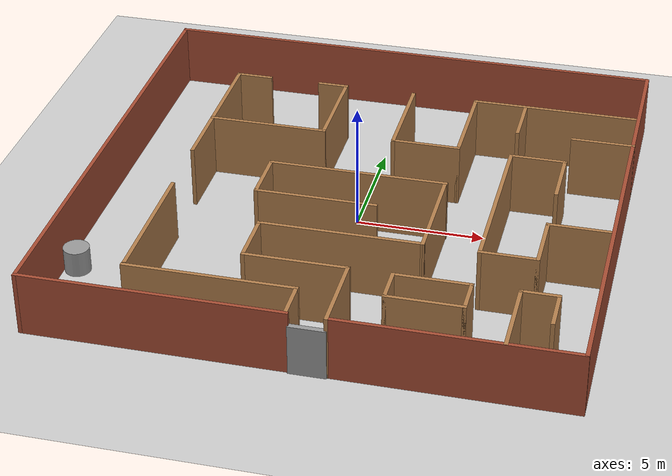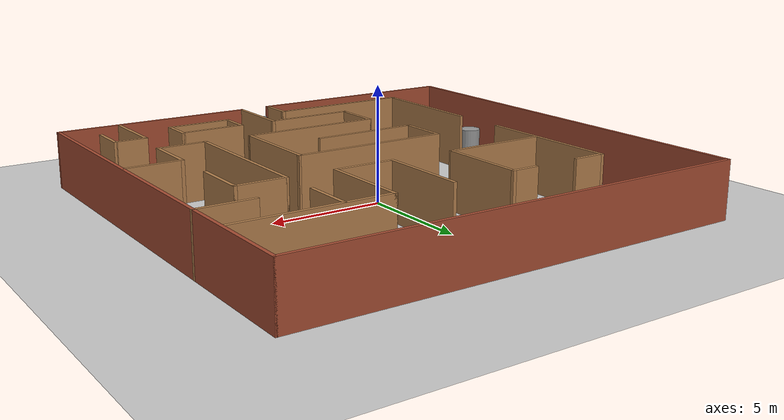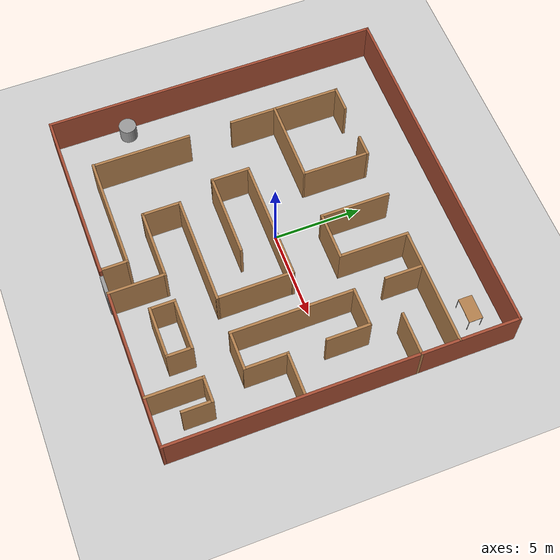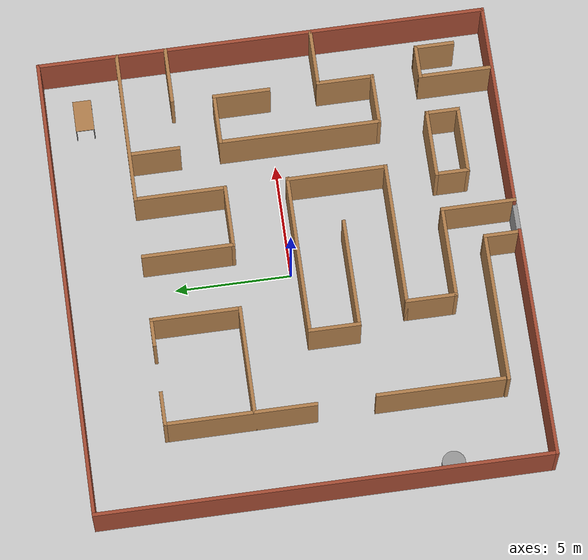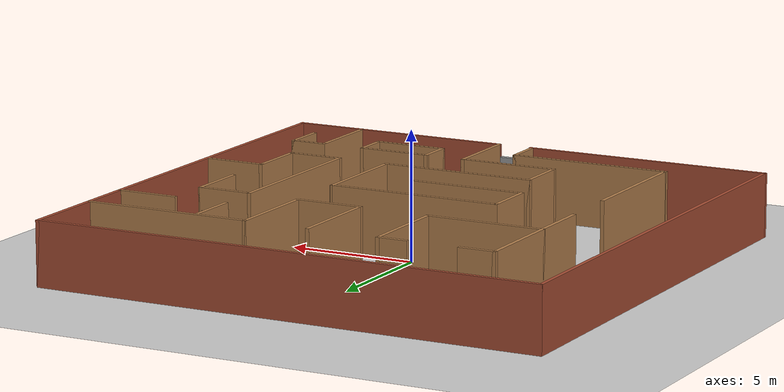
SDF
<sdf version="1.7">
 <world name="default">
  <light name="sun" type="directional">
   <pose>0 0 10 0 -0 0</pose>
   <diffuse>0.8 0.8 0.8 1</diffuse>
   <specular>0.1 0.1 0.1 1</specular>
   <attenuation>
    <range>1000</range>
    <constant>0.9</constant>
    <linear>0.01</linear>
    <quadratic>0.001</quadratic>
   </attenuation>
   <direction>-0.5 0.5 -1</direction>
   <spot><inner_angle>0</inner_angle><outer_angle>0</outer_angle><falloff>0</falloff></spot>
  </light>
  <model name="ground_plane">
   <static>1</static>
   <link name="link">
    <collision name="collision">
     <geometry><plane><normal>0 0 1</normal><size>100 100</size></plane></geometry>
     <surface><friction><ode><mu>100</mu><mu2>50</mu2></ode></friction></surface>
    </collision>
    <visual name="visual">
     <cast_shadows>0</cast_shadows>
     <geometry><plane><normal>0 0 1</normal><size>100 100</size></plane></geometry>
     <material>
      <script><uri>file://media/materials/scripts/gazebo.material</uri><name>Gazebo/Grey</name></script>
     </material>
    </visual>
   </link>
  </model>
  <gravity>0 0 -9.8</gravity>
  <magnetic_field>6e-06 2.3e-05 -4.2e-05</magnetic_field>
  <atmosphere type="adiabatic"/>
  <physics name="default_physics" default="0" type="ode">
   <max_step_size>0.001</max_step_size>
   <real_time_factor>1</real_time_factor>
   <real_time_update_rate>1000</real_time_update_rate>
  </physics>
  <scene><ambient>0.4 0.4 0.4 1</ambient><background>0.7 0.7 0.7 1</background><shadows>1</shadows></scene>
  <spherical_coordinates>
   <surface_model>EARTH_WGS84</surface_model>
   <latitude_deg>0</latitude_deg>
   <longitude_deg>0</longitude_deg>
   <elevation>0</elevation>
   <heading_deg>0</heading_deg>
  </spherical_coordinates>
  <model name="table">
   <static>0</static>
   <link name="link">
    <collision name="surface">
     <pose>0 0 1 0 -0 0</pose>
     <geometry><box><size>1.5 0.8 0.03</size></box></geometry>
     <surface><friction><ode><mu>0.6</mu><mu2>0.6</mu2></ode></friction></surface>
    </collision>
    <visual name="visual1">
     <pose>0 0 1 0 -0 0</pose>
     <geometry><box><size>1.4 0.8 0.04</size></box></geometry>
     <material>
      <script><uri>file://media/materials/scripts/gazebo.material</uri><name>Gazebo/Wood</name></script>
     </material>
    </visual>
    <collision name="front_left_leg">
     <pose>0.68 0.38 0.5 0 -0 0</pose>
     <geometry><cylinder><radius>0.02</radius><length>1</length></cylinder></geometry>
    </collision>
    <visual name="front_left_leg">
     <pose>0.68 0.38 0.5 0 -0 0</pose>
     <geometry><cylinder><radius>0.02</radius><length>1</length></cylinder></geometry>
     <material>
      <script><uri>file://media/materials/scripts/gazebo.material</uri><name>Gazebo/Grey</name></script>
     </material>
    </visual>
    <collision name="front_right_leg">
     <pose>0.68 -0.38 0.5 0 -0 0</pose>
     <geometry><cylinder><radius>0.02</radius><length>1</length></cylinder></geometry>
    </collision>
    <visual name="front_right_leg">
     <pose>0.68 -0.38 0.5 0 -0 0</pose>
     <geometry><cylinder><radius>0.02</radius><length>1</length></cylinder></geometry>
     <material>
      <script><uri>file://media/materials/scripts/gazebo.material</uri><name>Gazebo/Grey</name></script>
     </material>
    </visual>
    <collision name="back_right_leg">
     <pose>-0.68 -0.38 0.5 0 -0 0</pose>
     <geometry><cylinder><radius>0.02</radius><length>1</length></cylinder></geometry>
    </collision>
    <visual name="back_right_leg">
     <pose>-0.68 -0.38 0.5 0 -0 0</pose>
     <geometry><cylinder><radius>0.02</radius><length>1</length></cylinder></geometry>
     <material>
      <script><uri>file://media/materials/scripts/gazebo.material</uri><name>Gazebo/Grey</name></script>
     </material>
    </visual>
    <collision name="back_left_leg">
     <pose>-0.68 0.38 0.5 0 -0 0</pose>
     <geometry><cylinder><radius>0.02</radius><length>1</length></cylinder></geometry>
    </collision>
    <visual name="back_left_leg">
     <pose>-0.68 0.38 0.5 0 -0 0</pose>
     <geometry><cylinder><radius>0.02</radius><length>1</length></cylinder></geometry>
     <material>
      <script><uri>file://media/materials/scripts/gazebo.material</uri><name>Gazebo/Grey</name></script>
     </material>
    </visual>
    <inertial>
     <inertia><ixx>1</ixx><ixy>0</ixy><ixz>0</ixz><iyy>1</iyy><iyz>0</iyz><izz>1</izz></inertia>
     <mass>1</mass>
    </inertial>
   </link>
   <pose>8.12536 7.94356 -0 1e-06 0.034322 -0</pose>
  </model>
  <model name="maze-hard">
   <pose>0.054735 -0.079107 0 0 -0 0</pose>
   <link name="Door_3">
    <collision name="Door_3_Collision">
     <geometry><box><size>1.39777 0.2 2</size></box></geometry>
     <pose>0 0 1 0 -0 0</pose>
    </collision>
    <visual name="Door_3_Visual">
     <pose>0 0 1 0 -0 0</pose>
     <geometry><box><size>1.39777 0.2 2</size></box></geometry>
     <material>
      <script><uri>file://media/materials/scripts/gazebo.material</uri><name>Gazebo/Grey</name></script>
     </material>
    </visual>
    <pose>0.527099 -9.70361 0 0 -0 0</pose>
   </link>
   <link name="Wall_14">
    <collision name="Wall_14_Collision">
     <geometry><box><size>3.25 0.15 2.5</size></box></geometry>
     <pose>0 0 1.25 0 -0 0</pose>
    </collision>
    <visual name="Wall_14_Visual">
     <pose>0 0 1.25 0 -0 0</pose>
     <geometry><box><size>3.25 0.15 2.5</size></box></geometry>
     <material>
      <script><uri>file://media/materials/scripts/gazebo.material</uri><name>Gazebo/Wood</name></script>
      <ambient>1 1 1 1</ambient>
     </material>
     <meta><layer>0</layer></meta>
    </visual>
    <pose>1.1994 -8.125 0 0 -0 1.5708</pose>
   </link>
   <link name="Wall_15">
    <collision name="Wall_15_Collision">
     <geometry><box><size>4 0.15 2.5</size></box></geometry>
     <pose>0 0 1.25 0 -0 0</pose>
    </collision>
    <visual name="Wall_15_Visual">
     <pose>0 0 1.25 0 -0 0</pose>
     <geometry><box><size>4 0.15 2.5</size></box></geometry>
     <material>
      <script><uri>file://media/materials/scripts/gazebo.material</uri><name>Gazebo/Wood</name></script>
      <ambient>1 1 1 1</ambient>
     </material>
     <meta><layer>0</layer></meta>
    </visual>
    <pose>-0.725604 -6.575 0 0 -0 3.14159</pose>
   </link>
   <link name="Wall_19">
    <collision name="Wall_19_Collision">
     <geometry><box><size>1.5 0.15 2.5</size></box></geometry>
     <pose>0 0 1.25 0 -0 0</pose>
    </collision>
    <visual name="Wall_19_Visual">
     <pose>0 0 1.25 0 -0 0</pose>
     <geometry><box><size>1.5 0.15 2.5</size></box></geometry>
     <material>
      <script><uri>file://media/materials/scripts/gazebo.material</uri><name>Gazebo/Wood</name></script>
      <ambient>1 1 1 1</ambient>
     </material>
     <meta><layer>0</layer></meta>
    </visual>
    <pose>-0.240543 -8.86375 0 0 -0 1.5708</pose>
   </link>
   <link name="Wall_24">
    <collision name="Wall_24_Collision">
     <geometry><box><size>6.5 0.15 2.5</size></box></geometry>
     <pose>0 0 1.25 0 -0 0</pose>
    </collision>
    <visual name="Wall_24_Visual">
     <pose>0 0 1.25 0 -0 0</pose>
     <geometry><box><size>6.5 0.15 2.5</size></box></geometry>
     <material>
      <script><uri>file://media/materials/scripts/gazebo.material</uri><name>Gazebo/Wood</name></script>
      <ambient>1 1 1 1</ambient>
     </material>
     <meta><layer>0</layer></meta>
    </visual>
    <pose>-3.41554 -8.18875 0 0 -0 3.14159</pose>
   </link>
   <link name="Wall_26">
    <collision name="Wall_26_Collision">
     <geometry><box><size>2.25 0.15 2.5</size></box></geometry>
     <pose>0 0 1.25 0 -0 0</pose>
    </collision>
    <visual name="Wall_26_Visual">
     <pose>0 0 1.25 0 -0 0</pose>
     <geometry><box><size>2.25 0.15 2.5</size></box></geometry>
     <material>
      <script><uri>file://media/materials/scripts/gazebo.material</uri><name>Gazebo/Wood</name></script>
      <ambient>1 1 1 1</ambient>
     </material>
     <meta><layer>0</layer></meta>
    </visual>
    <pose>-2.6506 -5.525 0 0 -0 1.5708</pose>
   </link>
   <link name="Wall_27">
    <collision name="Wall_27_Collision">
     <geometry><box><size>6.25 0.15 2.5</size></box></geometry>
     <pose>0 0 1.25 0 -0 0</pose>
    </collision>
    <visual name="Wall_27_Visual">
     <pose>0 0 1.25 0 -0 0</pose>
     <geometry><box><size>6.25 0.15 2.5</size></box></geometry>
     <material>
      <script><uri>file://media/materials/scripts/gazebo.material</uri><name>Gazebo/Wood</name></script>
      <ambient>1 1 1 1</ambient>
     </material>
     <meta><layer>0</layer></meta>
    </visual>
    <pose>0.399396 -4.475 0 0 -0 0</pose>
   </link>
   <link name="Wall_28">
    <collision name="Wall_28_Collision">
     <geometry><box><size>4.36951 0.15 2.5</size></box></geometry>
     <pose>0 0 1.25 0 -0 0</pose>
    </collision>
    <visual name="Wall_28_Visual">
     <pose>0 0 1.25 0 -0 0</pose>
     <geometry><box><size>4.36951 0.15 2.5</size></box></geometry>
     <material>
      <script><uri>file://media/materials/scripts/gazebo.material</uri><name>Gazebo/Wood</name></script>
      <ambient>1 1 1 1</ambient>
     </material>
     <meta><layer>0</layer></meta>
    </visual>
    <pose>3.44693 -2.36524 0 0 -0 1.57197</pose>
   </link>
   <link name="Wall_30">
    <collision name="Wall_30_Collision">
     <geometry><box><size>1.5 0.15 2.5</size></box></geometry>
     <pose>0 0 1.25 0 -0 0</pose>
    </collision>
    <visual name="Wall_30_Visual">
     <pose>0 0 1.25 0 -0 0</pose>
     <geometry><box><size>1.5 0.15 2.5</size></box></geometry>
     <material>
      <script><uri>file://media/materials/scripts/gazebo.material</uri><name>Gazebo/Wood</name></script>
      <ambient>1 1 1 1</ambient>
     </material>
     <meta><layer>0</layer></meta>
    </visual>
    <pose>2.81671 -7.25703 0 0 -0 -1.5708</pose>
   </link>
   <link name="Wall_32">
    <collision name="Wall_32_Collision">
     <geometry><box><size>2.96067 0.15 2.5</size></box></geometry>
     <pose>0 0 1.25 0 -0 0</pose>
    </collision>
    <visual name="Wall_32_Visual">
     <pose>0 0 1.25 0 -0 0</pose>
     <geometry><box><size>2.96067 0.15 2.5</size></box></geometry>
     <material>
      <script><uri>file://media/materials/scripts/gazebo.material</uri><name>Gazebo/Wood</name></script>
      <ambient>1 1 1 1</ambient>
     </material>
     <meta><layer>0</layer></meta>
    </visual>
    <pose>4.22204 -7.93203 0 0 -0 0</pose>
   </link>
   <link name="Wall_33">
    <collision name="Wall_33_Collision">
     <geometry><box><size>1.5 0.15 2.5</size></box></geometry>
     <pose>0 0 1.25 0 -0 0</pose>
    </collision>
    <visual name="Wall_33_Visual">
     <pose>0 0 1.25 0 -0 0</pose>
     <geometry><box><size>1.5 0.15 2.5</size></box></geometry>
     <material>
      <script><uri>file://media/materials/scripts/gazebo.material</uri><name>Gazebo/Wood</name></script>
      <ambient>1 1 1 1</ambient>
     </material>
     <meta><layer>0</layer></meta>
    </visual>
    <pose>5.62738 -7.25703 0 0 -0 1.5708</pose>
   </link>
   <link name="Wall_36">
    <collision name="Wall_36_Collision">
     <geometry><box><size>3.25 0.15 2.5</size></box></geometry>
     <pose>0 0 1.25 0 -0 0</pose>
    </collision>
    <visual name="Wall_36_Visual">
     <pose>0 0 1.25 0 -0 0</pose>
     <geometry><box><size>3.25 0.15 2.5</size></box></geometry>
     <material>
      <script><uri>file://media/materials/scripts/gazebo.material</uri><name>Gazebo/Wood</name></script>
      <ambient>1 1 1 1</ambient>
     </material>
     <meta><layer>0</layer></meta>
    </visual>
    <pose>7.34111 -8.10897 0 0 -0 1.5708</pose>
   </link>
   <link name="Wall_37">
    <collision name="Wall_37_Collision">
     <geometry><box><size>1.5 0.15 2.5</size></box></geometry>
     <pose>0 0 1.25 0 -0 0</pose>
    </collision>
    <visual name="Wall_37_Visual">
     <pose>0 0 1.25 0 -0 0</pose>
     <geometry><box><size>1.5 0.15 2.5</size></box></geometry>
     <material>
      <script><uri>file://media/materials/scripts/gazebo.material</uri><name>Gazebo/Wood</name></script>
      <ambient>1 1 1 1</ambient>
     </material>
     <meta><layer>0</layer></meta>
    </visual>
    <pose>8.01611 -6.55897 0 0 -0 0</pose>
   </link>
   <link name="Wall_38">
    <collision name="Wall_38_Collision">
     <geometry><box><size>1.75 0.15 2.5</size></box></geometry>
     <pose>0 0 1.25 0 -0 0</pose>
    </collision>
    <visual name="Wall_38_Visual">
     <pose>0 0 1.25 0 -0 0</pose>
     <geometry><box><size>1.75 0.15 2.5</size></box></geometry>
     <material>
      <script><uri>file://media/materials/scripts/gazebo.material</uri><name>Gazebo/Wood</name></script>
      <ambient>1 1 1 1</ambient>
     </material>
     <meta><layer>0</layer></meta>
    </visual>
    <pose>8.69111 -7.35897 0 0 -0 -1.5708</pose>
   </link>
   <link name="Wall_4">
    <collision name="Wall_4_Collision">
     <geometry><box><size>10 0.15 2.5</size></box></geometry>
     <pose>0 0 1.25 0 -0 0</pose>
    </collision>
    <visual name="Wall_4_Visual">
     <pose>0 0 1.25 0 -0 0</pose>
     <geometry><box><size>10 0.15 2.5</size></box></geometry>
     <material>
      <script><uri>file://media/materials/scripts/gazebo.material</uri><name>Gazebo/Bricks</name></script>
      <ambient>1 1 1 1</ambient>
     </material>
     <meta><layer>0</layer></meta>
    </visual>
    <pose>-5.1256 -9.675 0 0 -0 3.14159</pose>
   </link>
   <link name="Wall_40">
    <collision name="Wall_40_Collision">
     <geometry><box><size>2.96067 0.15 2.5</size></box></geometry>
     <pose>0 0 1.25 0 -0 0</pose>
    </collision>
    <visual name="Wall_40_Visual">
     <pose>0 0 1.25 0 -0 0</pose>
     <geometry><box><size>2.96067 0.15 2.5</size></box></geometry>
     <material>
      <script><uri>file://media/materials/scripts/gazebo.material</uri><name>Gazebo/Wood</name></script>
      <ambient>1 1 1 1</ambient>
     </material>
     <meta><layer>0</layer></meta>
    </visual>
    <pose>4.22204 -6.58203 0 0 -0 0</pose>
   </link>
   <link name="Wall_42">
    <collision name="Wall_42_Collision">
     <geometry><box><size>7 0.15 2.5</size></box></geometry>
     <pose>0 0 1.25 0 -0 0</pose>
    </collision>
    <visual name="Wall_42_Visual">
     <pose>0 0 1.25 0 -0 0</pose>
     <geometry><box><size>7 0.15 2.5</size></box></geometry>
     <material>
      <script><uri>file://media/materials/scripts/gazebo.material</uri><name>Gazebo/Wood</name></script>
      <ambient>1 1 1 1</ambient>
     </material>
     <meta><layer>0</layer></meta>
    </visual>
    <pose>5.5321 -1.08224 0 0 -0 1.5708</pose>
   </link>
   <link name="Wall_44">
    <collision name="Wall_44_Collision">
     <geometry><box><size>2.25 0.15 2.5</size></box></geometry>
     <pose>0 0 1.25 0 -0 0</pose>
    </collision>
    <visual name="Wall_44_Visual">
     <pose>0 0 1.25 0 -0 0</pose>
     <geometry><box><size>2.25 0.15 2.5</size></box></geometry>
     <material>
      <script><uri>file://media/materials/scripts/gazebo.material</uri><name>Gazebo/Wood</name></script>
      <ambient>1 1 1 1</ambient>
     </material>
     <meta><layer>0</layer></meta>
    </visual>
    <pose>6.5821 -4.50723 0 0 -0 0</pose>
   </link>
   <link name="Wall_45">
    <collision name="Wall_45_Collision">
     <geometry><box><size>2.5 0.15 2.5</size></box></geometry>
     <pose>0 0 1.25 0 -0 0</pose>
    </collision>
    <visual name="Wall_45_Visual">
     <pose>0 0 1.25 0 -0 0</pose>
     <geometry><box><size>2.5 0.15 2.5</size></box></geometry>
     <material>
      <script><uri>file://media/materials/scripts/gazebo.material</uri><name>Gazebo/Wood</name></script>
      <ambient>1 1 1 1</ambient>
     </material>
     <meta><layer>0</layer></meta>
    </visual>
    <pose>7.6321 -3.33223 0 0 -0 1.5708</pose>
   </link>
   <link name="Wall_46">
    <collision name="Wall_46_Collision">
     <geometry><box><size>2.5 0.15 2.5</size></box></geometry>
     <pose>0 0 1.25 0 -0 0</pose>
    </collision>
    <visual name="Wall_46_Visual">
     <pose>0 0 1.25 0 -0 0</pose>
     <geometry><box><size>2.5 0.15 2.5</size></box></geometry>
     <material>
      <script><uri>file://media/materials/scripts/gazebo.material</uri><name>Gazebo/Wood</name></script>
      <ambient>1 1 1 1</ambient>
     </material>
     <meta><layer>0</layer></meta>
    </visual>
    <pose>8.8071 -2.15724 0 0 -0 0</pose>
   </link>
   <link name="Wall_48">
    <collision name="Wall_48_Collision">
     <geometry><box><size>7 0.15 2.5</size></box></geometry>
     <pose>0 0 1.25 0 -0 0</pose>
    </collision>
    <visual name="Wall_48_Visual">
     <pose>0 0 1.25 0 -0 0</pose>
     <geometry><box><size>7 0.15 2.5</size></box></geometry>
     <material>
      <script><uri>file://media/materials/scripts/gazebo.material</uri><name>Gazebo/Wood</name></script>
      <ambient>1 1 1 1</ambient>
     </material>
     <meta><layer>0</layer></meta>
    </visual>
    <pose>0.044134 -0.25549 0 0 -0 3.14159</pose>
   </link>
   <link name="Wall_5">
    <collision name="Wall_5_Collision">
     <geometry><box><size>19.5 0.15 2.5</size></box></geometry>
     <pose>0 0 1.25 0 -0 0</pose>
    </collision>
    <visual name="Wall_5_Visual">
     <pose>0 0 1.25 0 -0 0</pose>
     <geometry><box><size>19.5 0.15 2.5</size></box></geometry>
     <material>
      <script><uri>file://media/materials/scripts/gazebo.material</uri><name>Gazebo/Bricks</name></script>
      <ambient>1 1 1 1</ambient>
     </material>
     <meta><layer>0</layer></meta>
    </visual>
    <pose>-10.0506 0 0 0 -0 1.5708</pose>
   </link>
   <link name="Wall_50">
    <collision name="Wall_50_Collision">
     <geometry><box><size>2.75 0.15 2.5</size></box></geometry>
     <pose>0 0 1.25 0 -0 0</pose>
    </collision>
    <visual name="Wall_50_Visual">
     <pose>0 0 1.25 0 -0 0</pose>
     <geometry><box><size>2.75 0.15 2.5</size></box></geometry>
     <material>
      <script><uri>file://media/materials/scripts/gazebo.material</uri><name>Gazebo/Wood</name></script>
      <ambient>1 1 1 1</ambient>
     </material>
     <meta><layer>0</layer></meta>
    </visual>
    <pose>2.13827 2.42263 0 0 -0 3.14159</pose>
   </link>
   <link name="Wall_52">
    <collision name="Wall_52_Collision">
     <geometry><box><size>2.25 0.15 2.5</size></box></geometry>
     <pose>0 0 1.25 0 -0 0</pose>
    </collision>
    <visual name="Wall_52_Visual">
     <pose>0 0 1.25 0 -0 0</pose>
     <geometry><box><size>2.25 0.15 2.5</size></box></geometry>
     <material>
      <script><uri>file://media/materials/scripts/gazebo.material</uri><name>Gazebo/Wood</name></script>
      <ambient>1 1 1 1</ambient>
     </material>
     <meta><layer>0</layer></meta>
    </visual>
    <pose>6.5821 2.34276 0 0 -0 0</pose>
   </link>
   <link name="Wall_53">
    <collision name="Wall_53_Collision">
     <geometry><box><size>2.5 0.15 2.5</size></box></geometry>
     <pose>0 0 1.25 0 -0 0</pose>
    </collision>
    <visual name="Wall_53_Visual">
     <pose>0 0 1.25 0 -0 0</pose>
     <geometry><box><size>2.5 0.15 2.5</size></box></geometry>
     <material>
      <script><uri>file://media/materials/scripts/gazebo.material</uri><name>Gazebo/Wood</name></script>
      <ambient>1 1 1 1</ambient>
     </material>
     <meta><layer>0</layer></meta>
    </visual>
    <pose>7.6321 1.16776 0 0 -0 -1.5708</pose>
   </link>
   <link name="Wall_56">
    <collision name="Wall_56_Collision">
     <geometry><box><size>4 0.15 2.5</size></box></geometry>
     <pose>0 0 1.25 0 -0 0</pose>
    </collision>
    <visual name="Wall_56_Visual">
     <pose>0 0 1.25 0 -0 0</pose>
     <geometry><box><size>4 0.15 2.5</size></box></geometry>
     <material>
      <script><uri>file://media/materials/scripts/gazebo.material</uri><name>Gazebo/Wood</name></script>
      <ambient>1 1 1 1</ambient>
     </material>
     <meta><layer>0</layer></meta>
    </visual>
    <pose>3.43827 4.34763 0 0 -0 1.5708</pose>
   </link>
   <link name="Wall_57">
    <collision name="Wall_57_Collision">
     <geometry><box><size>6.75 0.15 2.5</size></box></geometry>
     <pose>0 0 1.25 0 -0 0</pose>
    </collision>
    <visual name="Wall_57_Visual">
     <pose>0 0 1.25 0 -0 0</pose>
     <geometry><box><size>6.75 0.15 2.5</size></box></geometry>
     <material>
      <script><uri>file://media/materials/scripts/gazebo.material</uri><name>Gazebo/Wood</name></script>
      <ambient>1 1 1 1</ambient>
     </material>
     <meta><layer>0</layer></meta>
    </visual>
    <pose>6.73827 6.27263 0 0 -0 0</pose>
   </link>
   <link name="Wall_59">
    <collision name="Wall_59_Collision">
     <geometry><box><size>2.25 0.15 2.5</size></box></geometry>
     <pose>0 0 1.25 0 -0 0</pose>
    </collision>
    <visual name="Wall_59_Visual">
     <pose>0 0 1.25 0 -0 0</pose>
     <geometry><box><size>2.25 0.15 2.5</size></box></geometry>
     <material>
      <script><uri>file://media/materials/scripts/gazebo.material</uri><name>Gazebo/Wood</name></script>
      <ambient>1 1 1 1</ambient>
     </material>
     <meta><layer>0</layer></meta>
    </visual>
    <pose>5.49497 5.21607 0 0 -0 -1.5708</pose>
   </link>
   <link name="Wall_6">
    <collision name="Wall_6_Collision">
     <geometry><box><size>20.25 0.15 2.5</size></box></geometry>
     <pose>0 0 1.25 0 -0 0</pose>
    </collision>
    <visual name="Wall_6_Visual">
     <pose>0 0 1.25 0 -0 0</pose>
     <geometry><box><size>20.25 0.15 2.5</size></box></geometry>
     <material>
      <script><uri>file://media/materials/scripts/gazebo.material</uri><name>Gazebo/Bricks</name></script>
      <ambient>1 1 1 1</ambient>
     </material>
     <meta><layer>0</layer></meta>
    </visual>
    <pose>-0.000604 9.675 0 0 -0 0</pose>
   </link>
   <link name="Wall_61">
    <collision name="Wall_61_Collision">
     <geometry><box><size>2.5 0.15 2.5</size></box></geometry>
     <pose>0 0 1.25 0 -0 0</pose>
    </collision>
    <visual name="Wall_61_Visual">
     <pose>0 0 1.25 0 -0 0</pose>
     <geometry><box><size>2.5 0.15 2.5</size></box></geometry>
     <material>
      <script><uri>file://media/materials/scripts/gazebo.material</uri><name>Gazebo/Wood</name></script>
      <ambient>1 1 1 1</ambient>
     </material>
     <meta><layer>0</layer></meta>
    </visual>
    <pose>8.87561 4.15397 0 0 -0 0</pose>
   </link>
   <link name="Wall_63">
    <collision name="Wall_63_Collision">
     <geometry><box><size>4 0.15 2.5</size></box></geometry>
     <pose>0 0 1.25 0 -0 0</pose>
    </collision>
    <visual name="Wall_63_Visual">
     <pose>0 0 1.25 0 -0 0</pose>
     <geometry><box><size>4 0.15 2.5</size></box></geometry>
     <material>
      <script><uri>file://media/materials/scripts/gazebo.material</uri><name>Gazebo/Wood</name></script>
      <ambient>1 1 1 1</ambient>
     </material>
     <meta><layer>0</layer></meta>
    </visual>
    <pose>0.83827 4.34763 0 0 -0 1.5708</pose>
   </link>
   <link name="Wall_66">
    <collision name="Wall_66_Collision">
     <geometry><box><size>3.82743 0.15 2.5</size></box></geometry>
     <pose>0 0 1.25 0 -0 0</pose>
    </collision>
    <visual name="Wall_66_Visual">
     <pose>0 0 1.25 0 -0 0</pose>
     <geometry><box><size>3.82743 0.15 2.5</size></box></geometry>
     <material>
      <script><uri>file://media/materials/scripts/gazebo.material</uri><name>Gazebo/Wood</name></script>
      <ambient>1 1 1 1</ambient>
     </material>
     <meta><layer>0</layer></meta>
    </visual>
    <pose>-2.00364 4.43946 0 0 -0 1.5708</pose>
   </link>
   <link name="Wall_7">
    <collision name="Wall_7_Collision">
     <geometry><box><size>19.5 0.15 2.5</size></box></geometry>
     <pose>0 0 1.25 0 -0 0</pose>
    </collision>
    <visual name="Wall_7_Visual">
     <pose>0 0 1.25 0 -0 0</pose>
     <geometry><box><size>19.5 0.15 2.5</size></box></geometry>
     <material>
      <script><uri>file://media/materials/scripts/gazebo.material</uri><name>Gazebo/Bricks</name></script>
      <ambient>1 1 1 1</ambient>
     </material>
     <meta><layer>0</layer></meta>
    </visual>
    <pose>10.0494 0 0 0 -0 -1.5708</pose>
   </link>
   <link name="Wall_70">
    <collision name="Wall_70_Collision">
     <geometry><box><size>4.75 0.15 2.5</size></box></geometry>
     <pose>0 0 1.25 0 -0 0</pose>
    </collision>
    <visual name="Wall_70_Visual">
     <pose>0 0 1.25 0 -0 0</pose>
     <geometry><box><size>4.75 0.15 2.5</size></box></geometry>
     <material>
      <script><uri>file://media/materials/scripts/gazebo.material</uri><name>Gazebo/Wood</name></script>
      <ambient>1 1 1 1</ambient>
     </material>
     <meta><layer>0</layer></meta>
    </visual>
    <pose>-4.30364 2.51446 0 0 -0 3.14159</pose>
   </link>
   <link name="Wall_72">
    <collision name="Wall_72_Collision">
     <geometry><box><size>6.5 0.15 2.5</size></box></geometry>
     <pose>0 0 1.25 0 -0 0</pose>
    </collision>
    <visual name="Wall_72_Visual">
     <pose>0 0 1.25 0 -0 0</pose>
     <geometry><box><size>6.5 0.15 2.5</size></box></geometry>
     <material>
      <script><uri>file://media/materials/scripts/gazebo.material</uri><name>Gazebo/Wood</name></script>
      <ambient>1 1 1 1</ambient>
     </material>
     <meta><layer>0</layer></meta>
    </visual>
    <pose>-6.60364 3.10317 0 0 -0 -1.5708</pose>
   </link>
   <link name="Wall_74">
    <collision name="Wall_74_Collision">
     <geometry><box><size>1.5 0.15 2.5</size></box></geometry>
     <pose>0 0 1.25 0 -0 0</pose>
    </collision>
    <visual name="Wall_74_Visual">
     <pose>0 0 1.25 0 -0 0</pose>
     <geometry><box><size>1.5 0.15 2.5</size></box></geometry>
     <material>
      <script><uri>file://media/materials/scripts/gazebo.material</uri><name>Gazebo/Wood</name></script>
      <ambient>1 1 1 1</ambient>
     </material>
     <meta><layer>0</layer></meta>
    </visual>
    <pose>-5.92864 6.27817 0 0 -0 0</pose>
   </link>
   <link name="Wall_76">
    <collision name="Wall_76_Collision">
     <geometry><box><size>1.25 0.15 2.5</size></box></geometry>
     <pose>0 0 1.25 0 -0 0</pose>
    </collision>
    <visual name="Wall_76_Visual">
     <pose>0 0 1.25 0 -0 0</pose>
     <geometry><box><size>1.25 0.15 2.5</size></box></geometry>
     <material>
      <script><uri>file://media/materials/scripts/gazebo.material</uri><name>Gazebo/Wood</name></script>
      <ambient>1 1 1 1</ambient>
     </material>
     <meta><layer>0</layer></meta>
    </visual>
    <pose>-2.55364 6.27817 0 0 -0 3.14159</pose>
   </link>
   <link name="Wall_78">
    <collision name="Wall_78_Collision">
     <geometry><box><size>2.25 0.15 2.5</size></box></geometry>
     <pose>0 0 1.25 0 -0 0</pose>
    </collision>
    <visual name="Wall_78_Visual">
     <pose>0 0 1.25 0 -0 0</pose>
     <geometry><box><size>2.25 0.15 2.5</size></box></geometry>
     <material>
      <script><uri>file://media/materials/scripts/gazebo.material</uri><name>Gazebo/Wood</name></script>
      <ambient>1 1 1 1</ambient>
     </material>
     <meta><layer>0</layer></meta>
    </visual>
    <pose>-3.38087 -1.30549 0 0 -0 -1.5708</pose>
   </link>
   <link name="Wall_8">
    <collision name="Wall_8_Collision">
     <geometry><box><size>9 0.15 2.5</size></box></geometry>
     <pose>0 0 1.25 0 -0 0</pose>
    </collision>
    <visual name="Wall_8_Visual">
     <pose>0 0 1.25 0 -0 0</pose>
     <geometry><box><size>9 0.15 2.5</size></box></geometry>
     <material>
      <script><uri>file://media/materials/scripts/gazebo.material</uri><name>Gazebo/Bricks</name></script>
      <ambient>1 1 1 1</ambient>
     </material>
     <meta><layer>0</layer></meta>
    </visual>
    <pose>5.6244 -9.675 0 0 -0 3.14159</pose>
   </link>
   <link name="Wall_80">
    <collision name="Wall_80_Collision">
     <geometry><box><size>4.75 0.15 2.5</size></box></geometry>
     <pose>0 0 1.25 0 -0 0</pose>
    </collision>
    <visual name="Wall_80_Visual">
     <pose>0 0 1.25 0 -0 0</pose>
     <geometry><box><size>4.75 0.15 2.5</size></box></geometry>
     <material>
      <script><uri>file://media/materials/scripts/gazebo.material</uri><name>Gazebo/Wood</name></script>
      <ambient>1 1 1 1</ambient>
     </material>
     <meta><layer>0</layer></meta>
    </visual>
    <pose>-1.08087 -2.35549 0 0 -0 0</pose>
   </link>
   <link name="Wall_82">
    <collision name="Wall_82_Collision">
     <geometry><box><size>5.5 0.15 2.5</size></box></geometry>
     <pose>0 0 1.25 0 -0 0</pose>
    </collision>
    <visual name="Wall_82_Visual">
     <pose>0 0 1.25 0 -0 0</pose>
     <geometry><box><size>5.5 0.15 2.5</size></box></geometry>
     <material>
      <script><uri>file://media/materials/scripts/gazebo.material</uri><name>Gazebo/Wood</name></script>
      <ambient>1 1 1 1</ambient>
     </material>
     <meta><layer>0</layer></meta>
    </visual>
    <pose>-6.57336 -5.33384 0 0 -0 -1.5708</pose>
   </link>
   <static>1</static>
  </model>
  <model name="unit_cylinder">
   <pose>-9.42851 -5.57131 0.5 0 -0 0</pose>
   <link name="link">
    <inertial>
     <mass>1</mass>
     <inertia><ixx>0.145833</ixx><ixy>0</ixy><ixz>0</ixz><iyy>0.145833</iyy><iyz>0</iyz><izz>0.125</izz></inertia>
    </inertial>
    <collision name="collision">
     <geometry><cylinder><radius>0.5</radius><length>1</length></cylinder></geometry>
    </collision>
    <visual name="visual">
     <geometry><cylinder><radius>0.5</radius><length>1</length></cylinder></geometry>
     <material>
      <script><name>Gazebo/Grey</name><uri>file://media/materials/scripts/gazebo.material</uri></script>
     </material>
    </visual>
   </link>
  </model>
 </world>
</sdf>
